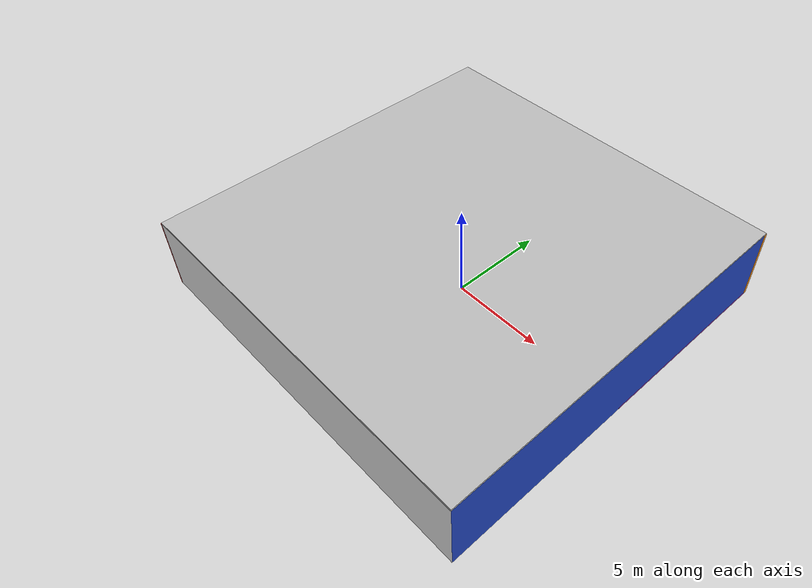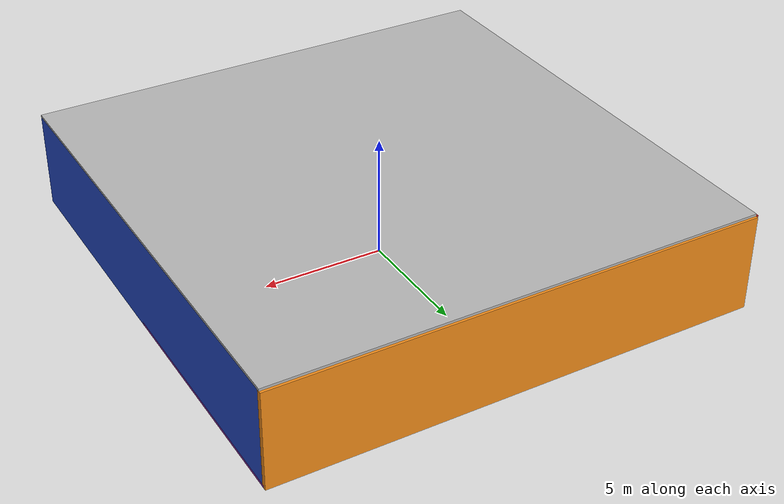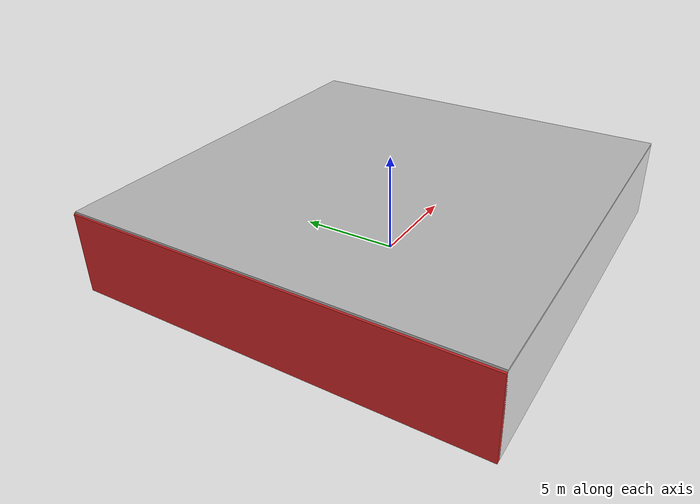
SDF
<sdf version="1.4">
 <world name="default">
  <physics type="ode">
   <max_step_size>0.001</max_step_size>
   <real_time_factor>1</real_time_factor>
   <real_time_update_rate>1000</real_time_update_rate>
   <gravity>0 0 -9.8</gravity>
  </physics>
  <scene><ambient>0.4 0.4 0.4 1</ambient><background>0.7 0.7 0.7 1</background><shadows>1</shadows></scene>
  <model name="Surrounding">
   <static>1</static>
   <link name="Ceiling">
    <collision name="Ceiling_Collision"><geometry><box><size>20 20 0.1</size></box></geometry></collision>
    <visual name="Ceiling_Visual">
     <geometry><box><size>20 20 0.1</size></box></geometry>
     <material>
      <script><uri>file://media/materials/scripts/gazebo.material</uri><name>Gazebo/JointAnchor</name></script>
     </material>
    </visual>
    <pose>0 0 4.05 0 0 0</pose>
   </link>
   <link name="Wall_South">
    <collision name="Wall_South_Collision">
     <geometry><box><size>20 0 4</size></box></geometry>
     <pose>0 0 2 0 -0 0</pose>
    </collision>
    <visual name="Wall_South_Visual">
     <pose>0 0 2 0 -0 0</pose>
     <geometry><box><size>20 0 4</size></box></geometry>
     <material>
      <script><uri>file://media/materials/scripts/gazebo.material</uri><name>Gazebo/WhiteGlow</name></script>
     </material>
    </visual>
    <velocity_decay><linear>0</linear><angular>0</angular></velocity_decay>
    <pose>0 -10 0 0 -0 0</pose>
   </link>
   <link name="Wall_East">
    <collision name="Wall_21_Collision">
     <geometry><box><size>20 0 4</size></box></geometry>
     <pose>0 0 2 0 -0 0</pose>
    </collision>
    <visual name="Wall_21_Visual">
     <pose>0 0 2 0 -0 0</pose>
     <geometry><box><size>20 0 4</size></box></geometry>
     <material>
      <script><uri>file://media/materials/scripts/gazebo.material</uri><name>Gazebo/BlueGlow</name></script>
     </material>
    </visual>
    <velocity_decay><linear>0</linear><angular>0</angular></velocity_decay>
    <pose>10 0 0 0 -0 1.5708</pose>
   </link>
   <link name="Wall_North">
    <collision name="Wall_22_Collision">
     <geometry><box><size>20 0.2 4</size></box></geometry>
     <pose>0 0 2 0 -0 0</pose>
    </collision>
    <visual name="Wall_22_Visual">
     <pose>0 0 2 0 -0 0</pose>
     <geometry><box><size>20 0.2 4</size></box></geometry>
     <material>
      <script><uri>file://media/materials/scripts/gazebo.material</uri><name>Gazebo/Orange</name></script>
     </material>
    </visual>
    <velocity_decay><linear>0</linear><angular>0</angular></velocity_decay>
    <pose>0 10 0 0 -0 0</pose>
   </link>
   <link name="Wall_West">
    <collision name="Wall_23_Collision">
     <geometry><box><size>20 0.2 4</size></box></geometry>
     <pose>0 0 2 0 -0 0</pose>
    </collision>
    <visual name="Wall_23_Visual">
     <pose>0 0 2 0 -0 0</pose>
     <geometry><box><size>20 0.2 4</size></box></geometry>
     <material>
      <script><uri>file://media/materials/scripts/gazebo.material</uri><name>Gazebo/RedGlow</name></script>
     </material>
    </visual>
    <velocity_decay><linear>0</linear><angular>0</angular></velocity_decay>
    <pose>-10 0 0 0 0 -1.5708</pose>
   </link>
   <link name="Ground_link">
    <collision name="collision">
     <pose>0 0 .05 0 -0 0</pose>
     <geometry><box><size>20 20 0.1</size></box></geometry>
    </collision>
    <visual name="visual">
     <pose>0 0 .05 0 -0 0</pose>
     <geometry><box><size>20 20 0.1</size></box></geometry>
     <material>
      <script><uri>file://media/materials/scripts/gazebo.material</uri><name>Gazebo/Purple</name></script>
     </material>
    </visual>
   </link>
   <static>1</static>
  </model>
  <spherical_coordinates>
   <surface_model>EARTH_WGS84</surface_model>
   <latitude_deg>0</latitude_deg>
   <longitude_deg>0</longitude_deg>
   <elevation>0</elevation>
   <heading_deg>0</heading_deg>
  </spherical_coordinates>
  <light name="lightball_0" type="diffuse">
   <diffuse>0.8 0.8 0.8 1</diffuse>
   <specular>0.2 0.2 0.2 1</specular>
   <attenuation>
    <range>100</range>
    <constant>0.7</constant>
    <linear>0.01</linear>
    <quadratic>0.001</quadratic>
   </attenuation>
   <direction>-0.5 0.1 -0.9</direction>
   <pose>-2.77920361818 -4.5306281337 1.60493150542 0 0 0</pose>
  </light>
  <light name="lightball_1" type="diffuse">
   <diffuse>0.8 0.8 0.8 1</diffuse>
   <specular>0.2 0.2 0.2 1</specular>
   <attenuation>
    <range>100</range>
    <constant>0.7</constant>
    <linear>0.01</linear>
    <quadratic>0.001</quadratic>
   </attenuation>
   <direction>-0.5 0.1 -0.9</direction>
   <pose>-2.28141050799 -4.39909012108 3.45870493422 0 0 0</pose>
  </light>
  <light name="lightball_2" type="diffuse">
   <diffuse>0.8 0.8 0.8 1</diffuse>
   <specular>0.2 0.2 0.2 1</specular>
   <attenuation>
    <range>100</range>
    <constant>0.7</constant>
    <linear>0.01</linear>
    <quadratic>0.001</quadratic>
   </attenuation>
   <direction>-0.5 0.1 -0.9</direction>
   <pose>3.21044992497 3.69832916271 2.20246395016 0 0 0</pose>
  </light>
  <light name="lightball_3" type="diffuse">
   <diffuse>0.8 0.8 0.8 1</diffuse>
   <specular>0.2 0.2 0.2 1</specular>
   <attenuation>
    <range>100</range>
    <constant>0.7</constant>
    <linear>0.01</linear>
    <quadratic>0.001</quadratic>
   </attenuation>
   <direction>-0.5 0.1 -0.9</direction>
   <pose>9.64488643991 2.4861177366 1.47530576535 0 0 0</pose>
  </light>
  <include><uri>model://cabinet</uri><pose>-4.26526025761 -7.11443859413 0 0 0 0.189667698363</pose></include>
  <include><uri>model://cabinet</uri><pose>-2.26136226576 -5.45792702795 0 0 0 0.400106537161</pose></include>
  <include><uri>model://cabinet</uri><pose>1.19642823132 -3.98605111664 0 0 0 0.804031498448</pose></include>
  <include>
   <uri>model://robocup_3Dsim_goal</uri>
   <pose>7.67210658056 -4.9537613939 0 0 0 1.26501018169</pose>
  </include>
 </world>
</sdf>

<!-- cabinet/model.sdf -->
<sdf version="1.5">
  <model name="cabinet">
    <static>true</static>
    <link name="cabinet_bottom_plate">
      <inertial>
        <pose>0 0 -1 0 0 0</pose>
        <inertia>
          <ixx>2.050000</ixx>
          <ixy>0</ixy>
          <ixz>0</ixz>
          <iyy>2.050000</iyy>
          <iyz>0</iyz>
          <izz>2.050000</izz>
        </inertia>
        <mass>25.000000</mass>
      </inertial>
      <collision name="cabinet_bottom_plate_geom">
        <pose>0 0 0.010000 0 0 0</pose>
        <geometry>
          <box>
            <size>0.450000 0.450000 0.020000</size>
          </box>
        </geometry>
      </collision>
      <visual name="cabinet_bottom_plate_geom_visual">
        <pose>0 0 0.010000 0 0 0</pose>
        <geometry>
          <box>
            <size>0.450000 0.450000 0.020000</size>
          </box>
        </geometry>
        <material>
          <script>
            <uri>model://media/materials/scripts/gazebo.material</uri>
            <name>Gazebo/Wood</name>
          </script>
        </material>
      </visual>
      <collision name="cabinet_bottom_plate_geom_cabinet_back_plate">
        <pose>0.235000 0 0.510000 0 0 0</pose>
        <geometry>
          <box>
            <size>0.020000 0.450000 1.020000</size>
          </box>
        </geometry>
      </collision>
      <visual name="cabinet_bottom_plate_geom_cabinet_back_plate_visual">
        <pose>0.235000 0 0.510000 0 0 0</pose>
        <geometry>
          <box>
            <size>0.020000 0.450000 1.020000</size>
          </box>
        </geometry>
        <material>
          <script>
            <uri>model://media/materials/scripts/gazebo.material</uri>
            <name>Gazebo/Wood</name>
          </script>
        </material>
      </visual>
      <collision name="cabinet_bottom_plate_geom_cabinet_left_plate">
        <pose>0 0.235000 0.510000 0 0 0</pose>
        <geometry>
          <box>
            <size>0.450000 0.020000 1.020000</size>
          </box>
        </geometry>
      </collision>
      <visual name="cabinet_bottom_plate_geom_cabinet_left_plate_visual">
        <pose>0 0.235000 0.510000 0 0 0</pose>
        <geometry>
          <box>
            <size>0.450000 0.020000 1.020000</size>
          </box>
        </geometry>
        <material>
          <script>
            <uri>model://media/materials/scripts/gazebo.material</uri>
            <name>Gazebo/Wood</name>
          </script>
        </material>
      </visual>
      <collision name="cabinet_bottom_plate_geom_cabinet_middle_plate">
        <pose>0 0 0.510000 0 0 0</pose>
        <geometry>
          <box>
            <size>0.450000 0.450000 0.020000</size>
          </box>
        </geometry>
      </collision>
      <visual name="cabinet_bottom_plate_geom_cabinet_middle_plate_visual">
        <pose>0 0 0.510000 0 0 0</pose>
        <geometry>
          <box>
            <size>0.450000 0.450000 0.020000</size>
          </box>
        </geometry>
        <material>
          <script>
            <uri>model://media/materials/scripts/gazebo.material</uri>
            <name>Gazebo/Wood</name>
          </script>
        </material>
      </visual>
      <collision name="cabinet_bottom_plate_geom_cabinet_right_plate">
        <pose>0 -0.235000 0.510000 0 0 0</pose>
        <geometry>
          <box>
            <size>0.450000 0.020000 1.020000</size>
          </box>
        </geometry>
      </collision>
      <visual name="cabinet_bottom_plate_geom_cabinet_right_plate_visual">
        <pose>0 -0.235000 0.510000 0 0 0</pose>
        <geometry>
          <box>
            <size>0.450000 0.020000 1.020000</size>
          </box>
        </geometry>
        <material>
          <script>
            <uri>model://media/materials/scripts/gazebo.material</uri>
            <name>Gazebo/Wood</name>
          </script>
        </material>
      </visual>
      <collision name="cabinet_bottom_plate_geom_cabinet_top_plate">
        <pose>0 0 1.010000 0 0 0</pose>
        <geometry>
          <box>
            <size>0.450000 0.450000 0.020000</size>
          </box>
        </geometry>
      </collision>
      <visual name="cabinet_bottom_plate_geom_cabinet_top_plate_visual">
        <pose>0 0 1.010000 0 0 0</pose>
        <geometry>
          <box>
            <size>0.450000 0.450000 0.020000</size>
          </box>
        </geometry>
        <material>
          <script>
            <uri>model://media/materials/scripts/gazebo.material</uri>
            <name>Gazebo/Wood</name>
          </script>
        </material>
      </visual>
    </link>
  </model>
</sdf>

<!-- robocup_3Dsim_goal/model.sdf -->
<sdf version="1.5">
  <model name="robocup_3d_goal">
    <static>true</static>
    <link name="left_post">
      <pose>0 1.05 0.45 0 0 0</pose>
      <collision name="collision">
        <geometry>
          <cylinder>
            <radius>0.05</radius>
            <length>0.9</length>
          </cylinder>
        </geometry>
      </collision>
      <visual name="visual">
        <geometry>
          <cylinder>
            <radius>0.05</radius>
            <length>0.9</length>
          </cylinder>
        </geometry>
        <material>
          <script>
            <uri>file://media/materials/scripts/gazebo.material</uri>
            <name>Gazebo/ZincYellow</name>
          </script>
        </material>
      </visual>
    </link>
    <link name="left_support_horiz_lower">
      <pose>0.30 1.05 0.01 0 0 0</pose>
      <collision name="collision">
        <geometry>
          <box>
            <size>0.50 0.02 0.02</size>
          </box>
        </geometry>
      </collision>
      <visual name="visual">
        <geometry>
          <box>
            <size>0.50 0.02 0.02</size>
          </box>
        </geometry>
        <material>
          <script>
            <uri>file://media/materials/scripts/gazebo.material</uri>
            <name>Gazebo/White</name>
          </script>
        </material>
      </visual>
    </link>
    <link name="left_support_horiz_upper">
      <pose>0.30 1.05 0.79 0 0 0</pose>
      <collision name="collision">
        <geometry>
          <box>
            <size>0.50 0.02 0.02</size>
          </box>
        </geometry>
      </collision>
      <visual name="visual">
        <geometry>
          <box>
            <size>0.50 0.02 0.02</size>
          </box>
        </geometry>
        <material>
          <script>
            <uri>file://media/materials/scripts/gazebo.material</uri>
            <name>Gazebo/White</name>
          </script>
        </material>
      </visual>
    </link>
    <link name="left_support_vertical">
      <pose>0.56 1.05 0.4 0 1.5708 0</pose>
      <collision name="collision">
        <geometry>
          <box>
            <size>0.80 0.02 0.02</size>
          </box>
        </geometry>
      </collision>
      <visual name="visual">
        <geometry>
          <box>
            <size>0.80 0.02 0.02</size>
          </box>
        </geometry>
        <material>
          <script>
            <uri>file://media/materials/scripts/gazebo.material</uri>
            <name>Gazebo/White</name>
          </script>
        </material>
      </visual>
    </link>
    <link name="right_support_horiz_lower">
      <pose>0.30 -1.05 0.01 0 0 0</pose>
      <collision name="collision">
        <geometry>
          <box>
            <size>0.50 0.02 0.02</size>
          </box>
        </geometry>
      </collision>
      <visual name="visual">
        <geometry>
          <box>
            <size>0.50 0.02 0.02</size>
          </box>
        </geometry>
        <material>
          <script>
            <uri>file://media/materials/scripts/gazebo.material</uri>
            <name>Gazebo/White</name>
          </script>
        </material>
      </visual>
    </link>
    <link name="right_support_horiz_upper">
      <pose>0.30 -1.05 0.79 0 0 0</pose>
      <collision name="collision">
        <geometry>
          <box>
            <size>0.50 0.02 0.02</size>
          </box>
        </geometry>
      </collision>
      <visual name="visual">
        <geometry>
          <box>
            <size>0.50 0.02 0.02</size>
          </box>
        </geometry>
        <material>
          <script>
            <uri>file://media/materials/scripts/gazebo.material</uri>
            <name>Gazebo/White</name>
          </script>
        </material>
      </visual>
    </link>
    <link name="right_support_vertical">
      <pose>0.56 -1.05 0.4 0 1.5708 0</pose>
      <collision name="collision">
        <geometry>
          <box>
            <size>0.80 0.02 0.02</size>
          </box>
        </geometry>
      </collision>
      <visual name="visual">
        <geometry>
          <box>
            <size>0.80 0.02 0.02</size>
          </box>
        </geometry>
        <material>
          <script>
            <uri>file://media/materials/scripts/gazebo.material</uri>
            <name>Gazebo/White</name>
          </script>
        </material>
      </visual>
    </link>
    <link name="center_support_horiz_lower">
      <pose>0.56 0 0.01 0 1.5708 0</pose>
      <collision name="collision">
        <geometry>
          <box>
            <size>0.02 2.08 0.02</size>
          </box>
        </geometry>
      </collision>
      <visual name="visual">
        <geometry>
          <box>
            <size>0.02 2.08 0.02</size>
          </box>
        </geometry>
        <material>
          <script>
            <uri>file://media/materials/scripts/gazebo.material</uri>
            <name>Gazebo/White</name>
          </script>
        </material>
      </visual>
    </link>
    <link name="center_support_horiz_upper">
      <pose>0.56 0 0.79 0 1.5708 0</pose>
      <collision name="collision">
        <geometry>
          <box>
            <size>0.02 2.08 0.02</size>
          </box>
        </geometry>
      </collision>
      <visual name="visual">
        <geometry>
          <box>
            <size>0.02 2.08 0.02</size>
          </box>
        </geometry>
        <material>
          <script>
            <uri>file://media/materials/scripts/gazebo.material</uri>
            <name>Gazebo/White</name>
          </script>
        </material>
      </visual>
    </link>
    <link name="right_post">
      <pose>0 -1.05 0.45 0 0 0</pose>
      <collision name="collision">
        <geometry>
          <cylinder>
            <radius>0.05</radius>
            <length>0.9</length>
          </cylinder>
        </geometry>
      </collision>
      <visual name="visual">
        <geometry>
          <cylinder>
            <radius>0.05</radius>
            <length>0.9</length>
          </cylinder>
        </geometry>
        <material>
          <script>
            <uri>file://media/materials/scripts/gazebo.material</uri>
            <name>Gazebo/ZincYellow</name>
          </script>
        </material>
      </visual>
    </link>
    <link name="crossbar">
      <pose>0 0 0.85 1.57 1.57 0</pose>
      <collision name="collision">
        <geometry>
          <cylinder>
            <radius>0.05</radius>
            <length>2.0</length>
          </cylinder>
        </geometry>
      </collision>
      <visual name="visual">
        <geometry>
          <cylinder>
            <radius>0.05</radius>
            <length>2.0</length>
          </cylinder>
        </geometry>
        <material>
          <script>
            <uri>file://media/materials/scripts/gazebo.material</uri>
            <name>Gazebo/ZincYellow</name>
          </script>
        </material>
      </visual>
    </link>
    <link name="center_net">
      <pose>0.56 0 0.40 0 0 0</pose>
      <collision name="collision">
        <geometry>
          <box>
            <size>0.01 2.1 0.80</size>
          </box>
        </geometry>
      </collision>
      <visual name="visual">
        <geometry>
          <box>
            <size>0.01 2.1 0.80</size>
          </box>
        </geometry>
        <material>
          <script>
            <uri>model://../model_source/models/robocup09_spl_field/materials/scripts/</uri>
            <uri>model://../model_source/models/robocup09_spl_field/materials/textures/</uri>
            <name>RoboCup/Net</name>
          </script>
        </material>
      </visual>
    </link>
    <link name="left_net">
      <pose>0.30 1.05 0.40 0 0 0</pose>
      <collision name="collision">
        <geometry>
          <box>
            <size>0.50 0.01 0.76</size>
          </box>
        </geometry>
      </collision>
      <visual name="visual">
        <geometry>
          <box>
            <size>0.50 0.01 0.76</size>
          </box>
        </geometry>
        <material>
          <script>
            <uri>model://../model_source/models/robocup09_spl_field/materials/scripts/</uri>
            <uri>model://../model_source/models/robocup09_spl_field/materials/textures/</uri>
            <name>RoboCup/Net</name>
          </script>
        </material>
      </visual>
    </link>
    <link name="right_net">
      <pose>0.30 -1.05 0.40 0 0 0</pose>
      <collision name="collision">
        <geometry>
          <box>
            <size>0.50 0.01 0.76</size>
          </box>
        </geometry>
      </collision>
      <visual name="visual">
        <geometry>
          <box>
            <size>0.50 0.01 0.76</size>
          </box>
        </geometry>
        <material>
          <script>
            <uri>model://../model_source/models/robocup09_spl_field/materials/scripts/</uri>
            <uri>model://../model_source/models/robocup09_spl_field/materials/textures/</uri>
            <name>RoboCup/Net</name>
          </script>
        </material>
      </visual>
    </link>
  </model>
</sdf>
